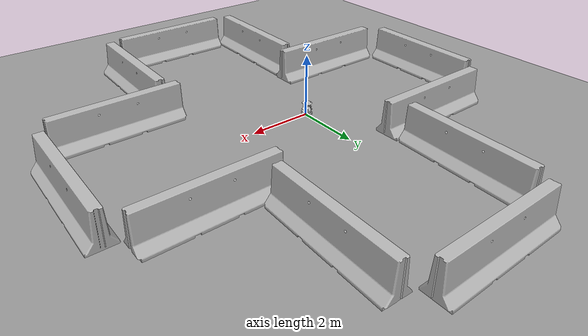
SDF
<sdf version="1.4">
 <world name="default">
  <light name="sun" type="directional">
   <pose>0 0 10 0 -0 0</pose>
   <diffuse>0.8 0.8 0.8 1</diffuse>
   <specular>0.2 0.2 0.2 1</specular>
   <attenuation>
    <range>1000</range>
    <constant>0.9</constant>
    <linear>0.01</linear>
    <quadratic>0.001</quadratic>
   </attenuation>
   <direction>0.5 0.1 -0.9</direction>
  </light>
  <scene><ambient>0.4 0.4 0.4 1</ambient><background>0.7 0.7 0.7 1</background><shadows>1</shadows></scene>
  <physics type="ode">
   <max_step_size>0.01</max_step_size>
   <real_time_factor>1</real_time_factor>
   <real_time_update_rate>100</real_time_update_rate>
   <gravity>0 0 -9.8</gravity>
  </physics>
  <model name="ground_plane_0">
   <static>1</static>
   <link name="link">
    <collision name="collision">
     <geometry><plane><normal>0 0 1</normal><size>100 100</size></plane></geometry>
     <surface><friction><ode><mu>100</mu><mu2>50</mu2></ode></friction></surface>
    </collision>
    <visual name="visual">
     <cast_shadows>0</cast_shadows>
     <geometry><plane><normal>0 0 1</normal><size>100 100</size></plane></geometry>
     <material>
      <script><uri>file://media/materials/scripts/gazebo.material</uri><name>Gazebo/Grey</name></script>
     </material>
    </visual>
    <velocity_decay><linear>0</linear><angular>0</angular></velocity_decay>
   </link>
   <pose>0.497681 0 0 0 -0 0</pose>
  </model>
  <spherical_coordinates>
   <surface_model>EARTH_WGS84</surface_model>
   <latitude_deg>0</latitude_deg>
   <longitude_deg>0</longitude_deg>
   <elevation>0</elevation>
   <heading_deg>0</heading_deg>
  </spherical_coordinates>
  <model name="mobile_base">
   <link name="base_footprint">
    <inertial>
     <pose>-0.00263512 -4.10874e-05 0.129243 0 -0 0</pose>
     <mass>4.6973</mass>
     <inertia>
      <ixx>0.1365</ixx>
      <ixy>-2.51802e-05</ixy>
      <ixz>0.0108194</ixz>
      <iyy>0.132157</iyy>
      <iyz>4.89572e-05</iyz>
      <izz>0.0741648</izz>
     </inertia>
    </inertial>
    <collision name="base_footprint_collision_base_link">
     <pose>0 0 0.06969 0 -0 0</pose>
     <geometry><cylinder><length>0.10938</length><radius>0.178</radius></cylinder></geometry>
     <surface><friction><ode><mu>0.3</mu><mu2>0.3</mu2></ode></friction></surface>
    </collision>
    <collision name="base_footprint_collision_camera_link">
     <pose>-0.087 -0.0015 0.2972 0 -0 0</pose>
     <geometry><box><size>0.073 0.276 0.072</size></box></geometry>
    </collision>
    <collision name="base_footprint_collision_caster_back_link">
     <pose>-0.135 0 0.0192 -1.5708 0 0</pose>
     <geometry><cylinder><length>0.0176</length><radius>0.017</radius></cylinder></geometry>
     <surface>
      <contact><ode><kp>1e+06</kp><kd>100</kd><max_vel>1</max_vel><min_depth>0.001</min_depth></ode></contact>
      <friction><ode><mu>0</mu><mu2>0</mu2></ode></friction>
     </surface>
    </collision>
    <collision name="base_footprint_collision_caster_front_link">
     <pose>0.115 0 0.0172 -1.5708 0 0</pose>
     <geometry><cylinder><length>0.0176</length><radius>0.017</radius></cylinder></geometry>
     <surface>
      <contact><ode><kp>1e+06</kp><kd>100</kd><max_vel>1</max_vel><min_depth>0.001</min_depth></ode></contact>
      <friction><ode><mu>0</mu><mu2>0</mu2></ode></friction>
     </surface>
    </collision>
    <collision name="base_footprint_collision_mount_asus_xtion_pro_link">
     <pose>-0.1024 0 0.2822 0 -0 0</pose>
     <geometry><box><size>0.033 0.276 0.012</size></box></geometry>
    </collision>
    <collision name="base_footprint_collision_plate_bottom_link">
     <pose>0 0 0.1408 0 -0 0</pose>
     <geometry><cylinder><length>0.006</length><radius>0.17</radius></cylinder></geometry>
    </collision>
    <collision name="base_footprint_collision_plate_middle_link">
     <pose>0 0 0.1976 0 -0 0</pose>
     <geometry><cylinder><length>0.006</length><radius>0.17</radius></cylinder></geometry>
    </collision>
    <collision name="base_footprint_collision_plate_top_link">
     <pose>0 0 0.4068 0 -0 0</pose>
     <geometry><cylinder><length>0.006</length><radius>0.17</radius></cylinder></geometry>
    </collision>
    <collision name="base_footprint_collision_pole_bottom_0_link">
     <pose>0.12 0.082 0.113 0 -0 0</pose>
     <geometry><cylinder><length>0.0492</length><radius>0.006</radius></cylinder></geometry>
    </collision>
    <collision name="base_footprint_collision_pole_bottom_1_link">
     <pose>0.055 0.12 0.113 0 -0 0</pose>
     <geometry><cylinder><length>0.0492</length><radius>0.006</radius></cylinder></geometry>
    </collision>
    <collision name="base_footprint_collision_pole_bottom_2_link">
     <pose>-0.055 0.12 0.113 0 -0 0</pose>
     <geometry><cylinder><length>0.0492</length><radius>0.006</radius></cylinder></geometry>
    </collision>
    <collision name="base_footprint_collision_pole_bottom_3_link">
     <pose>0.12 -0.082 0.113 0 -0 0</pose>
     <geometry><cylinder><length>0.0492</length><radius>0.006</radius></cylinder></geometry>
    </collision>
    <collision name="base_footprint_collision_pole_bottom_4_link">
     <pose>0.055 -0.12 0.113 0 -0 0</pose>
     <geometry><cylinder><length>0.0492</length><radius>0.006</radius></cylinder></geometry>
    </collision>
    <collision name="base_footprint_collision_pole_bottom_5_link">
     <pose>-0.055 -0.12 0.113 0 -0 0</pose>
     <geometry><cylinder><length>0.0492</length><radius>0.006</radius></cylinder></geometry>
    </collision>
    <collision name="base_footprint_collision_pole_kinect_0_link">
     <pose>-0.1024 0.098 0.2474 0 -0 0</pose>
     <geometry><cylinder><length>0.0936</length><radius>0.006</radius></cylinder></geometry>
    </collision>
    <collision name="base_footprint_collision_pole_kinect_1_link">
     <pose>-0.1024 -0.098 0.2474 0 -0 0</pose>
     <geometry><cylinder><length>0.0936</length><radius>0.006</radius></cylinder></geometry>
    </collision>
    <collision name="base_footprint_collision_pole_middle_0_link">
     <pose>0.0381 0.1505 0.1742 0 -0 0</pose>
     <geometry><cylinder><length>0.0608</length><radius>0.006</radius></cylinder></geometry>
    </collision>
    <collision name="base_footprint_collision_pole_middle_1_link">
     <pose>0.0381 -0.1505 0.1742 0 -0 0</pose>
     <geometry><cylinder><length>0.0608</length><radius>0.006</radius></cylinder></geometry>
    </collision>
    <collision name="base_footprint_collision_pole_middle_2_link">
     <pose>-0.0381 0.1505 0.1742 0 -0 0</pose>
     <geometry><cylinder><length>0.0608</length><radius>0.006</radius></cylinder></geometry>
    </collision>
    <collision name="base_footprint_collision_pole_middle_3_link">
     <pose>-0.0381 -0.1505 0.1742 0 -0 0</pose>
     <geometry><cylinder><length>0.0608</length><radius>0.006</radius></cylinder></geometry>
    </collision>
    <collision name="base_footprint_collision_pole_top_0_link">
     <pose>0.0381 0.1505 0.3022 0 -0 0</pose>
     <geometry><cylinder><length>0.2032</length><radius>0.006</radius></cylinder></geometry>
    </collision>
    <collision name="base_footprint_collision_pole_top_1_link">
     <pose>0.0381 -0.1505 0.3022 0 -0 0</pose>
     <geometry><cylinder><length>0.2032</length><radius>0.006</radius></cylinder></geometry>
    </collision>
    <collision name="base_footprint_collision_pole_top_2_link">
     <pose>-0.0381 0.1505 0.3022 0 -0 0</pose>
     <geometry><cylinder><length>0.2032</length><radius>0.006</radius></cylinder></geometry>
    </collision>
    <collision name="base_footprint_collision_pole_top_3_link">
     <pose>-0.0381 -0.1505 0.3022 0 -0 0</pose>
     <geometry><cylinder><length>0.2032</length><radius>0.006</radius></cylinder></geometry>
    </collision>
    <visual name="base_footprint_visual_base_link">
     <pose>0.001 0 0.06219 0 -0 0</pose>
     <geometry>
      <mesh><scale>1 1 1</scale><uri>/opt/ros/indigo/share/kobuki_description/meshes/main_body.dae</uri></mesh>
     </geometry>
    </visual>
    <visual name="base_footprint_visual_camera_link">
     <pose>-0.102 0.002 0.3012 0 -0 0</pose>
     <geometry>
      <mesh>
       <scale>1 1 1</scale>
       <uri>/opt/ros/indigo/share/turtlebot_description/meshes/sensors/xtion_pro_camera.dae</uri>
      </mesh>
     </geometry>
    </visual>
    <visual name="base_footprint_visual_mount_asus_xtion_pro_link">
     <pose>-0.1024 0 0.2822 -1.5708 0 0</pose>
     <geometry>
      <mesh>
       <scale>1 1 1</scale>
       <uri>/opt/ros/indigo/share/turtlebot_description/meshes/sensors/xtion_pro_stack.dae</uri>
      </mesh>
     </geometry>
    </visual>
    <visual name="base_footprint_visual_plate_bottom_link">
     <pose>0.02364 0 0.1408 0 -0 0</pose>
     <geometry>
      <mesh>
       <scale>1 1 1</scale>
       <uri>/opt/ros/indigo/share/turtlebot_description/meshes/stacks/hexagons/plate_bottom.dae</uri>
      </mesh>
     </geometry>
    </visual>
    <visual name="base_footprint_visual_plate_middle_link">
     <pose>-0.01364 0 0.1976 0 -0 0</pose>
     <geometry>
      <mesh>
       <scale>1 1 1</scale>
       <uri>/opt/ros/indigo/share/turtlebot_description/meshes/stacks/hexagons/plate_middle.dae</uri>
      </mesh>
     </geometry>
    </visual>
    <visual name="base_footprint_visual_plate_top_link">
     <pose>-0.01364 0 0.4068 0 -0 0</pose>
     <geometry>
      <mesh>
       <scale>1 1 1</scale>
       <uri>/opt/ros/indigo/share/turtlebot_description/meshes/stacks/hexagons/plate_top.dae</uri>
      </mesh>
     </geometry>
    </visual>
    <visual name="base_footprint_visual_pole_bottom_0_link">
     <pose>0.12 0.082 0.113 0 -0 0</pose>
     <geometry>
      <mesh>
       <scale>1 1 1</scale>
       <uri>/opt/ros/indigo/share/turtlebot_description/meshes/stacks/hexagons/pole_bottom.dae</uri>
      </mesh>
     </geometry>
    </visual>
    <visual name="base_footprint_visual_pole_bottom_1_link">
     <pose>0.055 0.12 0.113 0 -0 0</pose>
     <geometry>
      <mesh>
       <scale>1 1 1</scale>
       <uri>/opt/ros/indigo/share/turtlebot_description/meshes/stacks/hexagons/pole_bottom.dae</uri>
      </mesh>
     </geometry>
    </visual>
    <visual name="base_footprint_visual_pole_bottom_2_link">
     <pose>-0.055 0.12 0.113 0 -0 0</pose>
     <geometry>
      <mesh>
       <scale>1 1 1</scale>
       <uri>/opt/ros/indigo/share/turtlebot_description/meshes/stacks/hexagons/pole_bottom.dae</uri>
      </mesh>
     </geometry>
    </visual>
    <visual name="base_footprint_visual_pole_bottom_3_link">
     <pose>0.12 -0.082 0.113 0 -0 0</pose>
     <geometry>
      <mesh>
       <scale>1 1 1</scale>
       <uri>/opt/ros/indigo/share/turtlebot_description/meshes/stacks/hexagons/pole_bottom.dae</uri>
      </mesh>
     </geometry>
    </visual>
    <visual name="base_footprint_visual_pole_bottom_4_link">
     <pose>0.055 -0.12 0.113 0 -0 0</pose>
     <geometry>
      <mesh>
       <scale>1 1 1</scale>
       <uri>/opt/ros/indigo/share/turtlebot_description/meshes/stacks/hexagons/pole_bottom.dae</uri>
      </mesh>
     </geometry>
    </visual>
    <visual name="base_footprint_visual_pole_bottom_5_link">
     <pose>-0.055 -0.12 0.113 0 -0 0</pose>
     <geometry>
      <mesh>
       <scale>1 1 1</scale>
       <uri>/opt/ros/indigo/share/turtlebot_description/meshes/stacks/hexagons/pole_bottom.dae</uri>
      </mesh>
     </geometry>
    </visual>
    <visual name="base_footprint_visual_pole_kinect_0_link">
     <pose>-0.1024 0.098 0.2374 0 -0 0</pose>
     <geometry>
      <mesh>
       <scale>1 1 1</scale>
       <uri>/opt/ros/indigo/share/turtlebot_description/meshes/sensors/sensor_pole.dae</uri>
      </mesh>
     </geometry>
    </visual>
    <visual name="base_footprint_visual_pole_kinect_1_link">
     <pose>-0.1024 -0.098 0.2374 0 -0 0</pose>
     <geometry>
      <mesh>
       <scale>1 1 1</scale>
       <uri>/opt/ros/indigo/share/turtlebot_description/meshes/sensors/sensor_pole.dae</uri>
      </mesh>
     </geometry>
    </visual>
    <visual name="base_footprint_visual_pole_middle_0_link">
     <pose>0.0381 0.1505 0.1742 3.14159 -2.06823e-13 3.14159</pose>
     <geometry>
      <mesh>
       <scale>1 1 1</scale>
       <uri>/opt/ros/indigo/share/turtlebot_description/meshes/stacks/hexagons/pole_middle.dae</uri>
      </mesh>
     </geometry>
    </visual>
    <visual name="base_footprint_visual_pole_middle_1_link">
     <pose>0.0381 -0.1505 0.1742 3.14159 -2.06823e-13 3.14159</pose>
     <geometry>
      <mesh>
       <scale>1 1 1</scale>
       <uri>/opt/ros/indigo/share/turtlebot_description/meshes/stacks/hexagons/pole_middle.dae</uri>
      </mesh>
     </geometry>
    </visual>
    <visual name="base_footprint_visual_pole_middle_2_link">
     <pose>-0.0381 0.1505 0.1742 3.14159 -2.06823e-13 3.14159</pose>
     <geometry>
      <mesh>
       <scale>1 1 1</scale>
       <uri>/opt/ros/indigo/share/turtlebot_description/meshes/stacks/hexagons/pole_middle.dae</uri>
      </mesh>
     </geometry>
    </visual>
    <visual name="base_footprint_visual_pole_middle_3_link">
     <pose>-0.0381 -0.1505 0.1742 3.14159 -2.06823e-13 3.14159</pose>
     <geometry>
      <mesh>
       <scale>1 1 1</scale>
       <uri>/opt/ros/indigo/share/turtlebot_description/meshes/stacks/hexagons/pole_middle.dae</uri>
      </mesh>
     </geometry>
    </visual>
    <visual name="base_footprint_visual_pole_top_0_link">
     <pose>0.0381 0.1505 0.3022 0 -0 0</pose>
     <geometry>
      <mesh>
       <scale>1 1 1</scale>
       <uri>/opt/ros/indigo/share/turtlebot_description/meshes/stacks/hexagons/pole_top.dae</uri>
      </mesh>
     </geometry>
    </visual>
    <visual name="base_footprint_visual_pole_top_1_link">
     <pose>0.0381 -0.1505 0.3022 0 -0 0</pose>
     <geometry>
      <mesh>
       <scale>1 1 1</scale>
       <uri>/opt/ros/indigo/share/turtlebot_description/meshes/stacks/hexagons/pole_top.dae</uri>
      </mesh>
     </geometry>
    </visual>
    <visual name="base_footprint_visual_pole_top_2_link">
     <pose>-0.0381 0.1505 0.3022 0 -0 0</pose>
     <geometry>
      <mesh>
       <scale>1 1 1</scale>
       <uri>/opt/ros/indigo/share/turtlebot_description/meshes/stacks/hexagons/pole_top.dae</uri>
      </mesh>
     </geometry>
    </visual>
    <visual name="base_footprint_visual_pole_top_3_link">
     <pose>-0.0381 -0.1505 0.3022 0 -0 0</pose>
     <geometry>
      <mesh>
       <scale>1 1 1</scale>
       <uri>/opt/ros/indigo/share/turtlebot_description/meshes/stacks/hexagons/pole_top.dae</uri>
      </mesh>
     </geometry>
    </visual>
    <velocity_decay><linear>0</linear><angular>0</angular></velocity_decay>
    <sensor name="bumpers" type="contact">
     <always_on>1</always_on>
     <update_rate>50</update_rate>
     <visualize>1</visualize>
     <contact><collision>base_footprint_collision_base_link</collision><topic>__default_topic__</topic></contact>
     <pose>0 0 0.0102 0 -0 0</pose>
    </sensor>
    <velocity_decay><linear>0</linear><angular>0</angular></velocity_decay>
    <sensor name="camera" type="depth">
     <always_on>1</always_on>
     <update_rate>20</update_rate>
     <camera name="__default__">
      <horizontal_fov>1.0472</horizontal_fov>
      <image><format>B8G8R8</format><width>640</width><height>480</height></image>
      <clip><near>0.05</near><far>8</far></clip>
     </camera>
     <plugin name="kinect_camera_controller" filename="libgazebo_ros_openni_kinect.so">
      <cameraName>camera</cameraName>
      <alwaysOn>true</alwaysOn>
      <updateRate>10</updateRate>
      <imageTopicName>rgb/image_raw</imageTopicName>
      <depthImageTopicName>depth/image_raw</depthImageTopicName>
      <pointCloudTopicName>depth/points</pointCloudTopicName>
      <cameraInfoTopicName>rgb/camera_info</cameraInfoTopicName>
      <depthImageCameraInfoTopicName>depth/camera_info</depthImageCameraInfoTopicName>
      <frameName>camera_depth_optical_frame</frameName>
      <baseline>0.1</baseline>
      <distortion_k1>0.0</distortion_k1>
      <distortion_k2>0.0</distortion_k2>
      <distortion_k3>0.0</distortion_k3>
      <distortion_t1>0.0</distortion_t1>
      <distortion_t2>0.0</distortion_t2>
      <pointCloudCutoff>0.4</pointCloudCutoff>
      <robotNamespace>/</robotNamespace>
     </plugin>
     <pose>-0.087 -0.0015 0.2972 0 -0 0</pose>
    </sensor>
    <velocity_decay><linear>0</linear><angular>0</angular></velocity_decay>
    <velocity_decay><linear>0</linear><angular>0</angular></velocity_decay>
    <velocity_decay><linear>0</linear><angular>0</angular></velocity_decay>
    <sensor name="cliff_sensor_front" type="ray">
     <always_on>1</always_on>
     <update_rate>50</update_rate>
     <visualize>1</visualize>
     <ray>
      <scan>
       <horizontal>
        <samples>50</samples>
        <resolution>1</resolution>
        <min_angle>-0.0436</min_angle>
        <max_angle>0.0436</max_angle>
       </horizontal>
      </scan>
      <range><min>0.01</min><max>0.15</max><resolution>1</resolution></range>
     </ray>
     <pose>0.156 0 0.0316 3.14159 1.57079 3.14159</pose>
    </sensor>
    <velocity_decay><linear>0</linear><angular>0</angular></velocity_decay>
    <sensor name="cliff_sensor_left" type="ray">
     <always_on>1</always_on>
     <update_rate>50</update_rate>
     <visualize>1</visualize>
     <ray>
      <scan>
       <horizontal>
        <samples>50</samples>
        <resolution>1</resolution>
        <min_angle>-0.0436</min_angle>
        <max_angle>0.0436</max_angle>
       </horizontal>
      </scan>
      <range><min>0.01</min><max>0.15</max><resolution>1</resolution></range>
     </ray>
     <pose>0.08734 0.13601 0.0316 3.14159 1.57079 3.14159</pose>
    </sensor>
    <velocity_decay><linear>0</linear><angular>0</angular></velocity_decay>
    <sensor name="cliff_sensor_right" type="ray">
     <always_on>1</always_on>
     <update_rate>50</update_rate>
     <visualize>1</visualize>
     <ray>
      <scan>
       <horizontal>
        <samples>50</samples>
        <resolution>1</resolution>
        <min_angle>-0.0436</min_angle>
        <max_angle>0.0436</max_angle>
       </horizontal>
      </scan>
      <range><min>0.01</min><max>0.15</max><resolution>1</resolution></range>
     </ray>
     <pose>0.085 -0.13601 0.0316 3.14159 1.57079 3.14159</pose>
    </sensor>
    <velocity_decay><linear>0</linear><angular>0</angular></velocity_decay>
    <sensor name="imu" type="imu">
     <always_on>1</always_on>
     <update_rate>50</update_rate>
     <visualize>0</visualize>
     <imu>
      <noise>
       <type>gaussian</type>
       <rate><mean>0</mean><stddev>1.96e-06</stddev><bias_mean>0</bias_mean><bias_stddev>0</bias_stddev></rate>
       <accel><mean>0</mean><stddev>0.017</stddev><bias_mean>0.1</bias_mean><bias_stddev>0.001</bias_stddev></accel>
      </noise>
     </imu>
     <pose>0.056 0.062 0.0304 0 -0 0</pose>
    </sensor>
   </link>
   <link name="wheel_left_link">
    <pose>0 0.115 0.0352 -1.5708 0 0</pose>
    <inertial>
     <mass>0.01</mass>
     <inertia><ixx>0.001</ixx><ixy>0</ixy><ixz>0</ixz><iyy>0.001</iyy><iyz>0</iyz><izz>0.001</izz></inertia>
    </inertial>
    <collision name="wheel_left_link_collision">
     <geometry><cylinder><length>0.0206</length><radius>0.0352</radius></cylinder></geometry>
     <surface>
      <contact><ode><kp>1e+06</kp><kd>100</kd><max_vel>1</max_vel><min_depth>0.001</min_depth></ode></contact>
      <friction><ode><mu>1</mu><mu2>1</mu2></ode></friction>
     </surface>
    </collision>
    <visual name="wheel_left_link_visual">
     <geometry>
      <mesh><scale>1 1 1</scale><uri>/opt/ros/indigo/share/kobuki_description/meshes/wheel.dae</uri></mesh>
     </geometry>
    </visual>
    <velocity_decay><linear>0</linear><angular>0</angular></velocity_decay>
   </link>
   <joint name="wheel_left_joint" type="revolute">
    <child>wheel_left_link</child>
    <parent>base_footprint</parent>
    <axis><xyz>0 1 0</xyz><limit><lower>-1e+16</lower><upper>1e+16</upper></limit></axis>
   </joint>
   <link name="wheel_right_link">
    <pose>0 -0.115 0.0352 -1.5708 0 0</pose>
    <inertial>
     <mass>0.01</mass>
     <inertia><ixx>0.001</ixx><ixy>0</ixy><ixz>0</ixz><iyy>0.001</iyy><iyz>0</iyz><izz>0.001</izz></inertia>
    </inertial>
    <collision name="wheel_right_link_collision">
     <geometry><cylinder><length>0.0206</length><radius>0.035</radius></cylinder></geometry>
     <surface>
      <contact><ode><kp>1e+06</kp><kd>100</kd><max_vel>1</max_vel><min_depth>0.001</min_depth></ode></contact>
      <friction><ode><mu>1</mu><mu2>1</mu2></ode></friction>
     </surface>
    </collision>
    <visual name="wheel_right_link_visual">
     <geometry>
      <mesh><scale>1 1 1</scale><uri>/opt/ros/indigo/share/kobuki_description/meshes/wheel.dae</uri></mesh>
     </geometry>
    </visual>
    <velocity_decay><linear>0</linear><angular>0</angular></velocity_decay>
   </link>
   <joint name="wheel_right_joint" type="revolute">
    <child>wheel_right_link</child>
    <parent>base_footprint</parent>
    <axis><xyz>0 1 0</xyz><limit><lower>-1e+16</lower><upper>1e+16</upper></limit></axis>
   </joint>
   <static>0</static>
   <plugin name="kobuki_controller" filename="libgazebo_ros_kobuki.so">
    <publish_tf>1</publish_tf>
    <left_wheel_joint_name>wheel_left_joint</left_wheel_joint_name>
    <right_wheel_joint_name>wheel_right_joint</right_wheel_joint_name>
    <wheel_separation>.230</wheel_separation>
    <wheel_diameter>0.070</wheel_diameter>
    <torque>1.0</torque>
    <velocity_command_timeout>0.6</velocity_command_timeout>
    <cliff_sensor_left_name>cliff_sensor_left</cliff_sensor_left_name>
    <cliff_sensor_center_name>cliff_sensor_front</cliff_sensor_center_name>
    <cliff_sensor_right_name>cliff_sensor_right</cliff_sensor_right_name>
    <cliff_detection_threshold>0.04</cliff_detection_threshold>
    <bumper_name>bumpers</bumper_name>
    <imu_name>imu</imu_name>
    <robotNamespace>/</robotNamespace>
   </plugin>
   <pose>-0.014277 0.020363 -0.001131 0.000498 -0.007996 -0.169763</pose>
  </model>
  <model name="jersey_barrier_0">
   <static>1</static>
   <link name="link">
    <visual name="visual">
     <geometry><mesh><uri>model://jersey_barrier/meshes/jersey_barrier.dae</uri></mesh></geometry>
    </visual>
    <collision name="upright">
     <pose>0 0 0.5715 0 -0 0</pose>
     <geometry><box><size>4.06542 0.3063 1.143</size></box></geometry>
    </collision>
    <collision name="base">
     <pose>0 0 0.032258 0 -0 0</pose>
     <geometry><box><size>4.06542 0.8107 0.064516</size></box></geometry>
    </collision>
    <collision name="base2">
     <pose>0 0 0.1 0 -0 0</pose>
     <geometry><box><size>4.06542 0.65 0.1</size></box></geometry>
    </collision>
    <collision name="base3">
     <pose>0 0 0.2 0 -0 0</pose>
     <geometry><box><size>4.06542 0.5 0.1</size></box></geometry>
    </collision>
    <collision name="left-angle">
     <pose>0 -0.224 0.2401 0.9 -0 0</pose>
     <geometry><box><size>4.06542 0.5 0.064516</size></box></geometry>
    </collision>
    <collision name="right-angle">
     <pose>0 0.224 0.2401 -0.9 0 0</pose>
     <geometry><box><size>4.06542 0.5 0.064516</size></box></geometry>
    </collision>
    <velocity_decay><linear>0</linear><angular>0</angular></velocity_decay>
   </link>
   <pose>5.16221 -2.43118 0 0 -0 0</pose>
  </model>
  <model name="jersey_barrier_1">
   <static>1</static>
   <link name="link">
    <visual name="visual">
     <geometry><mesh><uri>model://jersey_barrier/meshes/jersey_barrier.dae</uri></mesh></geometry>
    </visual>
    <collision name="upright">
     <pose>0 0 0.5715 0 -0 0</pose>
     <geometry><box><size>4.06542 0.3063 1.143</size></box></geometry>
    </collision>
    <collision name="base">
     <pose>0 0 0.032258 0 -0 0</pose>
     <geometry><box><size>4.06542 0.8107 0.064516</size></box></geometry>
    </collision>
    <collision name="base2">
     <pose>0 0 0.1 0 -0 0</pose>
     <geometry><box><size>4.06542 0.65 0.1</size></box></geometry>
    </collision>
    <collision name="base3">
     <pose>0 0 0.2 0 -0 0</pose>
     <geometry><box><size>4.06542 0.5 0.1</size></box></geometry>
    </collision>
    <collision name="left-angle">
     <pose>0 -0.224 0.2401 0.9 -0 0</pose>
     <geometry><box><size>4.06542 0.5 0.064516</size></box></geometry>
    </collision>
    <collision name="right-angle">
     <pose>0 0.224 0.2401 -0.9 0 0</pose>
     <geometry><box><size>4.06542 0.5 0.064516</size></box></geometry>
    </collision>
    <velocity_decay><linear>0</linear><angular>0</angular></velocity_decay>
   </link>
   <pose>5.0613 2.58502 0 0 -0 0</pose>
  </model>
  <model name="jersey_barrier_2">
   <static>1</static>
   <link name="link">
    <visual name="visual">
     <geometry><mesh><uri>model://jersey_barrier/meshes/jersey_barrier.dae</uri></mesh></geometry>
    </visual>
    <collision name="upright">
     <pose>0 0 0.5715 0 -0 0</pose>
     <geometry><box><size>4.06542 0.3063 1.143</size></box></geometry>
    </collision>
    <collision name="base">
     <pose>0 0 0.032258 0 -0 0</pose>
     <geometry><box><size>4.06542 0.8107 0.064516</size></box></geometry>
    </collision>
    <collision name="base2">
     <pose>0 0 0.1 0 -0 0</pose>
     <geometry><box><size>4.06542 0.65 0.1</size></box></geometry>
    </collision>
    <collision name="base3">
     <pose>0 0 0.2 0 -0 0</pose>
     <geometry><box><size>4.06542 0.5 0.1</size></box></geometry>
    </collision>
    <collision name="left-angle">
     <pose>0 -0.224 0.2401 0.9 -0 0</pose>
     <geometry><box><size>4.06542 0.5 0.064516</size></box></geometry>
    </collision>
    <collision name="right-angle">
     <pose>0 0.224 0.2401 -0.9 0 0</pose>
     <geometry><box><size>4.06542 0.5 0.064516</size></box></geometry>
    </collision>
    <velocity_decay><linear>0</linear><angular>0</angular></velocity_decay>
   </link>
   <pose>7.52348 0.142784 0 0 0 -1.57599</pose>
  </model>
  <model name="jersey_barrier">
   <static>1</static>
   <link name="link">
    <visual name="visual">
     <geometry><mesh><uri>model://jersey_barrier/meshes/jersey_barrier.dae</uri></mesh></geometry>
    </visual>
    <collision name="upright">
     <pose>0 0 0.5715 0 -0 0</pose>
     <geometry><box><size>4.06542 0.3063 1.143</size></box></geometry>
    </collision>
    <collision name="base">
     <pose>0 0 0.032258 0 -0 0</pose>
     <geometry><box><size>4.06542 0.8107 0.064516</size></box></geometry>
    </collision>
    <collision name="base2">
     <pose>0 0 0.1 0 -0 0</pose>
     <geometry><box><size>4.06542 0.65 0.1</size></box></geometry>
    </collision>
    <collision name="base3">
     <pose>0 0 0.2 0 -0 0</pose>
     <geometry><box><size>4.06542 0.5 0.1</size></box></geometry>
    </collision>
    <collision name="left-angle">
     <pose>0 -0.224 0.2401 0.9 -0 0</pose>
     <geometry><box><size>4.06542 0.5 0.064516</size></box></geometry>
    </collision>
    <collision name="right-angle">
     <pose>0 0.224 0.2401 -0.9 0 0</pose>
     <geometry><box><size>4.06542 0.5 0.064516</size></box></geometry>
    </collision>
    <velocity_decay><linear>0</linear><angular>0</angular></velocity_decay>
   </link>
   <pose>1 7.47966 0 0 -0 0</pose>
  </model>
  <model name="jersey_barrier_3">
   <static>1</static>
   <link name="link">
    <visual name="visual">
     <geometry><mesh><uri>model://jersey_barrier/meshes/jersey_barrier.dae</uri></mesh></geometry>
    </visual>
    <collision name="upright">
     <pose>0 0 0.5715 0 -0 0</pose>
     <geometry><box><size>4.06542 0.3063 1.143</size></box></geometry>
    </collision>
    <collision name="base">
     <pose>0 0 0.032258 0 -0 0</pose>
     <geometry><box><size>4.06542 0.8107 0.064516</size></box></geometry>
    </collision>
    <collision name="base2">
     <pose>0 0 0.1 0 -0 0</pose>
     <geometry><box><size>4.06542 0.65 0.1</size></box></geometry>
    </collision>
    <collision name="base3">
     <pose>0 0 0.2 0 -0 0</pose>
     <geometry><box><size>4.06542 0.5 0.1</size></box></geometry>
    </collision>
    <collision name="left-angle">
     <pose>0 -0.224 0.2401 0.9 -0 0</pose>
     <geometry><box><size>4.06542 0.5 0.064516</size></box></geometry>
    </collision>
    <collision name="right-angle">
     <pose>0 0.224 0.2401 -0.9 0 0</pose>
     <geometry><box><size>4.06542 0.5 0.064516</size></box></geometry>
    </collision>
    <velocity_decay><linear>0</linear><angular>0</angular></velocity_decay>
   </link>
   <pose>1 -7 0 0 -0 0</pose>
  </model>
  <model name="jersey_barrier_4">
   <static>1</static>
   <link name="link">
    <visual name="visual">
     <geometry><mesh><uri>model://jersey_barrier/meshes/jersey_barrier.dae</uri></mesh></geometry>
    </visual>
    <collision name="upright">
     <pose>0 0 0.5715 0 -0 0</pose>
     <geometry><box><size>4.06542 0.3063 1.143</size></box></geometry>
    </collision>
    <collision name="base">
     <pose>0 0 0.032258 0 -0 0</pose>
     <geometry><box><size>4.06542 0.8107 0.064516</size></box></geometry>
    </collision>
    <collision name="base2">
     <pose>0 0 0.1 0 -0 0</pose>
     <geometry><box><size>4.06542 0.65 0.1</size></box></geometry>
    </collision>
    <collision name="base3">
     <pose>0 0 0.2 0 -0 0</pose>
     <geometry><box><size>4.06542 0.5 0.1</size></box></geometry>
    </collision>
    <collision name="left-angle">
     <pose>0 -0.224 0.2401 0.9 -0 0</pose>
     <geometry><box><size>4.06542 0.5 0.064516</size></box></geometry>
    </collision>
    <collision name="right-angle">
     <pose>0 0.224 0.2401 -0.9 0 0</pose>
     <geometry><box><size>4.06542 0.5 0.064516</size></box></geometry>
    </collision>
    <velocity_decay><linear>0</linear><angular>0</angular></velocity_decay>
   </link>
   <pose>-3 -2.45969 0 0 -0 0</pose>
  </model>
  <model name="jersey_barrier_5">
   <static>1</static>
   <link name="link">
    <visual name="visual">
     <geometry><mesh><uri>model://jersey_barrier/meshes/jersey_barrier.dae</uri></mesh></geometry>
    </visual>
    <collision name="upright">
     <pose>0 0 0.5715 0 -0 0</pose>
     <geometry><box><size>4.06542 0.3063 1.143</size></box></geometry>
    </collision>
    <collision name="base">
     <pose>0 0 0.032258 0 -0 0</pose>
     <geometry><box><size>4.06542 0.8107 0.064516</size></box></geometry>
    </collision>
    <collision name="base2">
     <pose>0 0 0.1 0 -0 0</pose>
     <geometry><box><size>4.06542 0.65 0.1</size></box></geometry>
    </collision>
    <collision name="base3">
     <pose>0 0 0.2 0 -0 0</pose>
     <geometry><box><size>4.06542 0.5 0.1</size></box></geometry>
    </collision>
    <collision name="left-angle">
     <pose>0 -0.224 0.2401 0.9 -0 0</pose>
     <geometry><box><size>4.06542 0.5 0.064516</size></box></geometry>
    </collision>
    <collision name="right-angle">
     <pose>0 0.224 0.2401 -0.9 0 0</pose>
     <geometry><box><size>4.06542 0.5 0.064516</size></box></geometry>
    </collision>
    <velocity_decay><linear>0</linear><angular>0</angular></velocity_decay>
   </link>
   <pose>-3 2.49018 0 0 -0 0</pose>
  </model>
  <model name="jersey_barrier_6">
   <static>1</static>
   <link name="link">
    <visual name="visual">
     <geometry><mesh><uri>model://jersey_barrier/meshes/jersey_barrier.dae</uri></mesh></geometry>
    </visual>
    <collision name="upright">
     <pose>0 0 0.5715 0 -0 0</pose>
     <geometry><box><size>4.06542 0.3063 1.143</size></box></geometry>
    </collision>
    <collision name="base">
     <pose>0 0 0.032258 0 -0 0</pose>
     <geometry><box><size>4.06542 0.8107 0.064516</size></box></geometry>
    </collision>
    <collision name="base2">
     <pose>0 0 0.1 0 -0 0</pose>
     <geometry><box><size>4.06542 0.65 0.1</size></box></geometry>
    </collision>
    <collision name="base3">
     <pose>0 0 0.2 0 -0 0</pose>
     <geometry><box><size>4.06542 0.5 0.1</size></box></geometry>
    </collision>
    <collision name="left-angle">
     <pose>0 -0.224 0.2401 0.9 -0 0</pose>
     <geometry><box><size>4.06542 0.5 0.064516</size></box></geometry>
    </collision>
    <collision name="right-angle">
     <pose>0 0.224 0.2401 -0.9 0 0</pose>
     <geometry><box><size>4.06542 0.5 0.064516</size></box></geometry>
    </collision>
    <velocity_decay><linear>0</linear><angular>0</angular></velocity_decay>
   </link>
   <pose>-1.51532 -4.92016 0 0 0 -1.58699</pose>
  </model>
  <model name="jersey_barrier_7">
   <static>1</static>
   <link name="link">
    <visual name="visual">
     <geometry><mesh><uri>model://jersey_barrier/meshes/jersey_barrier.dae</uri></mesh></geometry>
    </visual>
    <collision name="upright">
     <pose>0 0 0.5715 0 -0 0</pose>
     <geometry><box><size>4.06542 0.3063 1.143</size></box></geometry>
    </collision>
    <collision name="base">
     <pose>0 0 0.032258 0 -0 0</pose>
     <geometry><box><size>4.06542 0.8107 0.064516</size></box></geometry>
    </collision>
    <collision name="base2">
     <pose>0 0 0.1 0 -0 0</pose>
     <geometry><box><size>4.06542 0.65 0.1</size></box></geometry>
    </collision>
    <collision name="base3">
     <pose>0 0 0.2 0 -0 0</pose>
     <geometry><box><size>4.06542 0.5 0.1</size></box></geometry>
    </collision>
    <collision name="left-angle">
     <pose>0 -0.224 0.2401 0.9 -0 0</pose>
     <geometry><box><size>4.06542 0.5 0.064516</size></box></geometry>
    </collision>
    <collision name="right-angle">
     <pose>0 0.224 0.2401 -0.9 0 0</pose>
     <geometry><box><size>4.06542 0.5 0.064516</size></box></geometry>
    </collision>
    <velocity_decay><linear>0</linear><angular>0</angular></velocity_decay>
   </link>
   <pose>-5.447 -0.01018 0 0 -0 1.55452</pose>
  </model>
  <model name="jersey_barrier_8">
   <static>1</static>
   <link name="link">
    <visual name="visual">
     <geometry><mesh><uri>model://jersey_barrier/meshes/jersey_barrier.dae</uri></mesh></geometry>
    </visual>
    <collision name="upright">
     <pose>0 0 0.5715 0 -0 0</pose>
     <geometry><box><size>4.06542 0.3063 1.143</size></box></geometry>
    </collision>
    <collision name="base">
     <pose>0 0 0.032258 0 -0 0</pose>
     <geometry><box><size>4.06542 0.8107 0.064516</size></box></geometry>
    </collision>
    <collision name="base2">
     <pose>0 0 0.1 0 -0 0</pose>
     <geometry><box><size>4.06542 0.65 0.1</size></box></geometry>
    </collision>
    <collision name="base3">
     <pose>0 0 0.2 0 -0 0</pose>
     <geometry><box><size>4.06542 0.5 0.1</size></box></geometry>
    </collision>
    <collision name="left-angle">
     <pose>0 -0.224 0.2401 0.9 -0 0</pose>
     <geometry><box><size>4.06542 0.5 0.064516</size></box></geometry>
    </collision>
    <collision name="right-angle">
     <pose>0 0.224 0.2401 -0.9 0 0</pose>
     <geometry><box><size>4.06542 0.5 0.064516</size></box></geometry>
    </collision>
    <velocity_decay><linear>0</linear><angular>0</angular></velocity_decay>
   </link>
   <pose>3.48819 -4.91486 0 0 -0 1.55786</pose>
  </model>
  <model name="jersey_barrier_9">
   <static>1</static>
   <link name="link">
    <visual name="visual">
     <geometry><mesh><uri>model://jersey_barrier/meshes/jersey_barrier.dae</uri></mesh></geometry>
    </visual>
    <collision name="upright">
     <pose>0 0 0.5715 0 -0 0</pose>
     <geometry><box><size>4.06542 0.3063 1.143</size></box></geometry>
    </collision>
    <collision name="base">
     <pose>0 0 0.032258 0 -0 0</pose>
     <geometry><box><size>4.06542 0.8107 0.064516</size></box></geometry>
    </collision>
    <collision name="base2">
     <pose>0 0 0.1 0 -0 0</pose>
     <geometry><box><size>4.06542 0.65 0.1</size></box></geometry>
    </collision>
    <collision name="base3">
     <pose>0 0 0.2 0 -0 0</pose>
     <geometry><box><size>4.06542 0.5 0.1</size></box></geometry>
    </collision>
    <collision name="left-angle">
     <pose>0 -0.224 0.2401 0.9 -0 0</pose>
     <geometry><box><size>4.06542 0.5 0.064516</size></box></geometry>
    </collision>
    <collision name="right-angle">
     <pose>0 0.224 0.2401 -0.9 0 0</pose>
     <geometry><box><size>4.06542 0.5 0.064516</size></box></geometry>
    </collision>
    <velocity_decay><linear>0</linear><angular>0</angular></velocity_decay>
   </link>
   <pose>3.51093 5.05582 0 0 -0 1.54499</pose>
  </model>
  <model name="jersey_barrier_10">
   <static>1</static>
   <link name="link">
    <visual name="visual">
     <geometry><mesh><uri>model://jersey_barrier/meshes/jersey_barrier.dae</uri></mesh></geometry>
    </visual>
    <collision name="upright">
     <pose>0 0 0.5715 0 -0 0</pose>
     <geometry><box><size>4.06542 0.3063 1.143</size></box></geometry>
    </collision>
    <collision name="base">
     <pose>0 0 0.032258 0 -0 0</pose>
     <geometry><box><size>4.06542 0.8107 0.064516</size></box></geometry>
    </collision>
    <collision name="base2">
     <pose>0 0 0.1 0 -0 0</pose>
     <geometry><box><size>4.06542 0.65 0.1</size></box></geometry>
    </collision>
    <collision name="base3">
     <pose>0 0 0.2 0 -0 0</pose>
     <geometry><box><size>4.06542 0.5 0.1</size></box></geometry>
    </collision>
    <collision name="left-angle">
     <pose>0 -0.224 0.2401 0.9 -0 0</pose>
     <geometry><box><size>4.06542 0.5 0.064516</size></box></geometry>
    </collision>
    <collision name="right-angle">
     <pose>0 0.224 0.2401 -0.9 0 0</pose>
     <geometry><box><size>4.06542 0.5 0.064516</size></box></geometry>
    </collision>
    <velocity_decay><linear>0</linear><angular>0</angular></velocity_decay>
   </link>
   <pose>-1.36578 4.96464 0 0 -0 1.52798</pose>
  </model>
 </world>
</sdf>
